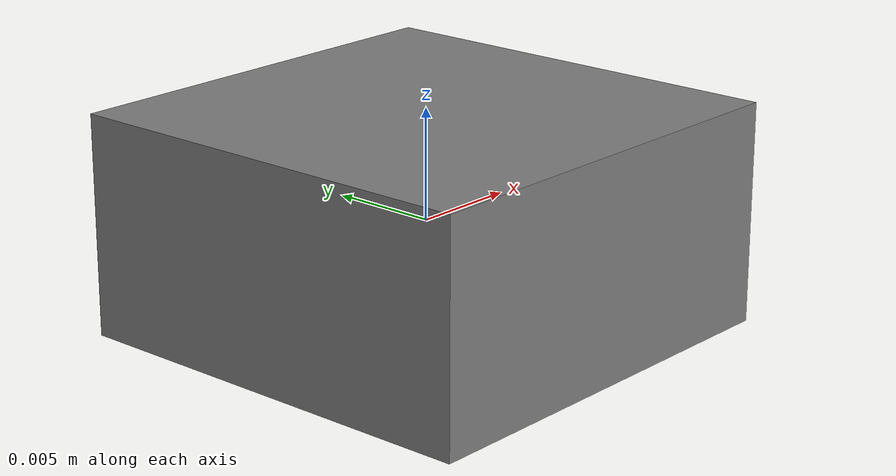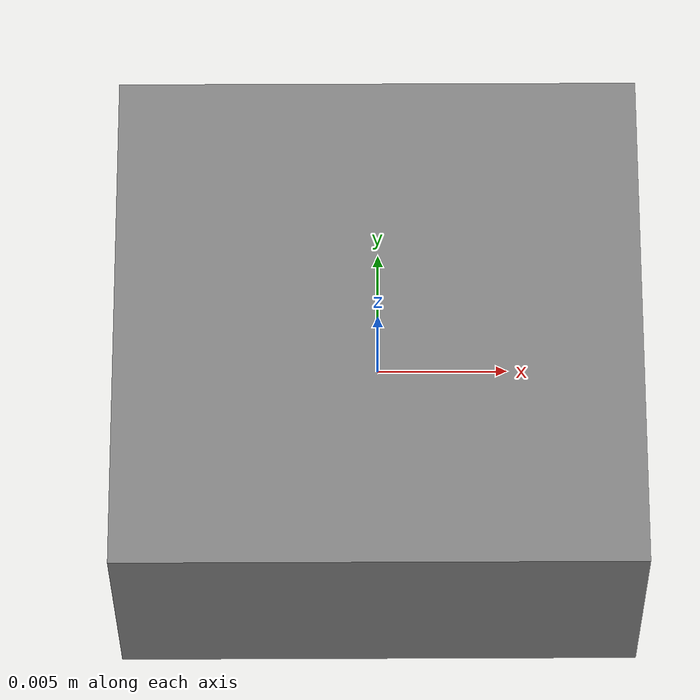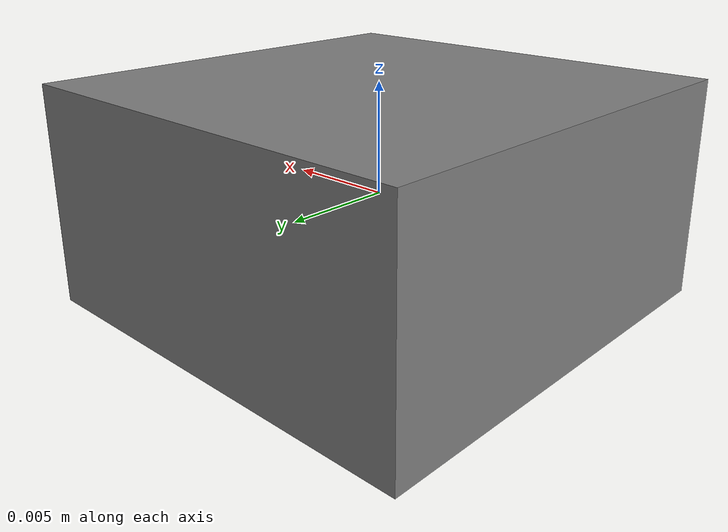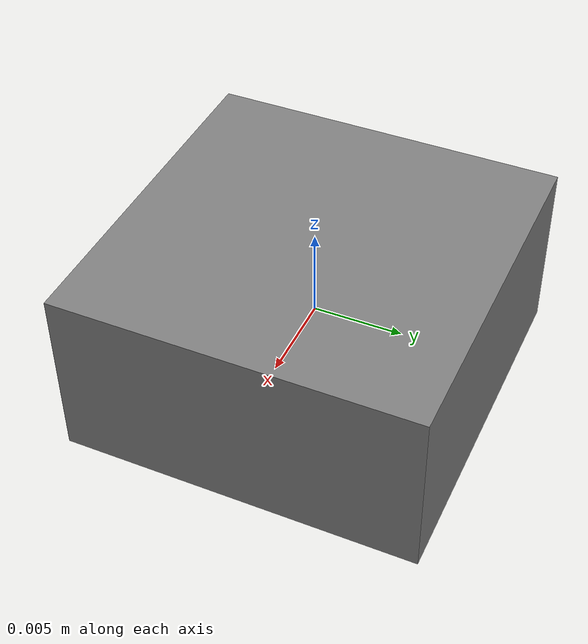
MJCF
<mujoco model="bno085">
  <compiler angle="radian" />
  <worldbody>
    <body name="mount">
      <body name="sensor_link">
        <inertial pos="0 0 0" mass="0.02" diaginertia="0.000001 0.000001 0.000001" />
        <geom name="sensor_body" type="box" size="0.01 0.01 0.005" mass="0.02" />
        <site name="sensor_site" pos="0 0 0" size="0.001" />
      </body>
    </body>
  </worldbody>
  <sensor>
    <framequat name="imu_orientation" objtype="site" objname="sensor_site" />
    <accelerometer name="accelerometer" site="sensor_site" />
    <gyro name="gyroscope" site="sensor_site" />
  </sensor>
</mujoco>
